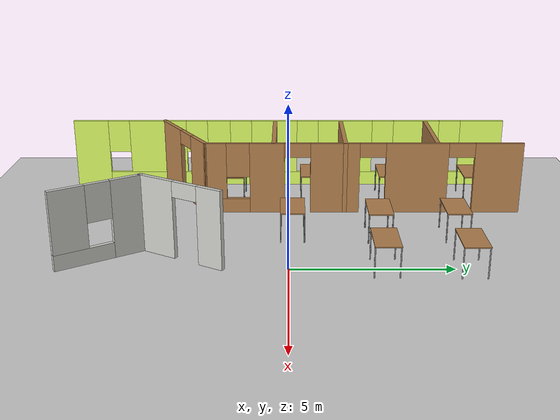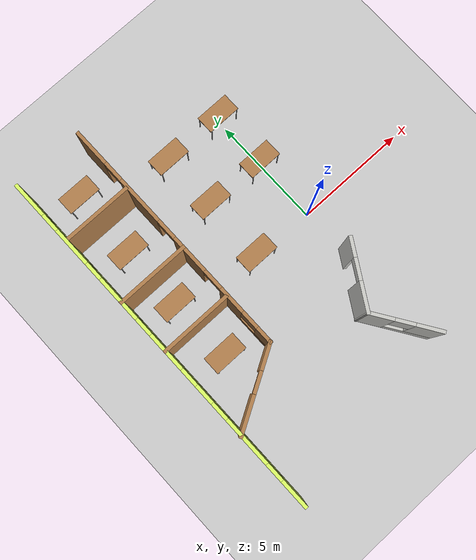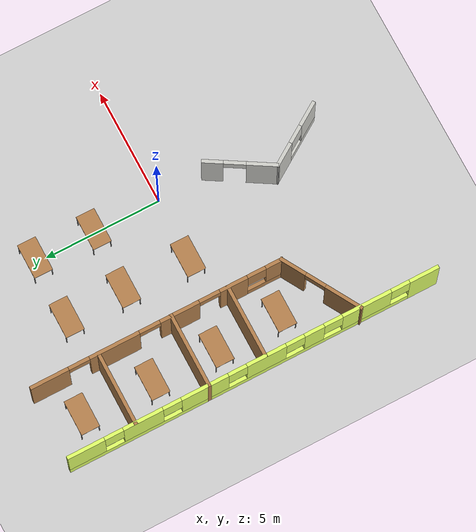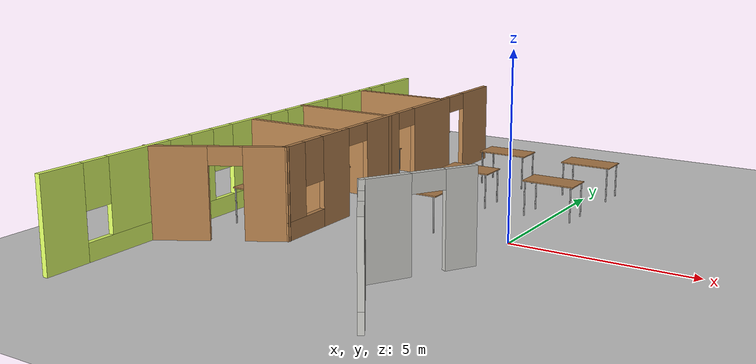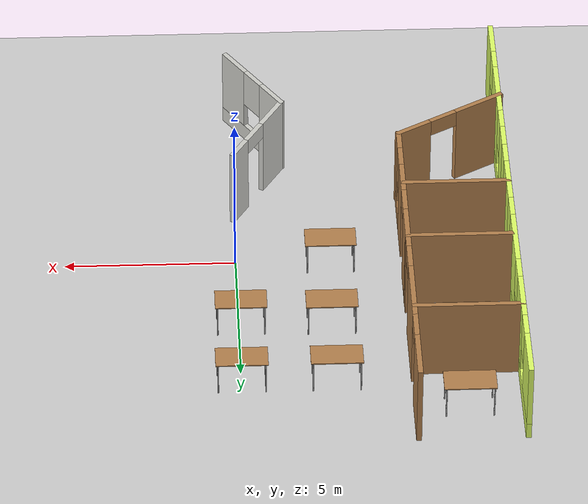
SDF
<sdf version="1.6">
 <world name="default">
  <model name="ground_plane">
   <static>1</static>
   <link name="link">
    <collision name="collision">
     <geometry><plane><normal>0 0 1</normal><size>100 100</size></plane></geometry>
     <surface>
      <contact><collide_bitmask>65535</collide_bitmask></contact>
      <friction><ode><mu>100</mu><mu2>50</mu2></ode></friction>
     </surface>
    </collision>
    <visual name="visual">
     <cast_shadows>0</cast_shadows>
     <geometry><plane><normal>0 0 1</normal><size>100 100</size></plane></geometry>
     <material>
      <script><uri>file://media/materials/scripts/gazebo.material</uri><name>Gazebo/Grey</name></script>
     </material>
    </visual>
   </link>
  </model>
  <model name="myBuilding">
   <pose>-0.01524 -2.0117 0 0 -0 0</pose>
   <link name="Wall_1">
    <pose>-7.98476 2.0117 0 0 -0 1.5708</pose>
    <visual name="Wall_1_Visual_0">
     <pose>-7.43035 0 1.25 0 -0 0</pose>
     <geometry><box><size>1.2893 0.15 2.5</size></box></geometry>
     <material>
      <script><uri>file://media/materials/scripts/gazebo.material</uri><name>Gazebo/Grey</name></script>
      <ambient>0.870588 1 0.4 1</ambient>
     </material>
     <meta><layer>0</layer></meta>
    </visual>
    <collision name="Wall_1_Collision_0">
     <geometry><box><size>1.2893 0.15 2.5</size></box></geometry>
     <pose>-7.43035 0 1.25 0 -0 0</pose>
    </collision>
    <visual name="Wall_1_Visual_1">
     <pose>0.64465 0 0.25 0 -0 0</pose>
     <geometry><box><size>14.8607 0.15 0.5</size></box></geometry>
     <material>
      <script><uri>file://media/materials/scripts/gazebo.material</uri><name>Gazebo/Grey</name></script>
      <ambient>0.870588 1 0.4 1</ambient>
     </material>
     <meta><layer>0</layer></meta>
    </visual>
    <collision name="Wall_1_Collision_1">
     <geometry><box><size>14.8607 0.15 0.5</size></box></geometry>
     <pose>0.64465 0 0.25 0 -0 0</pose>
    </collision>
    <visual name="Wall_1_Visual_2">
     <pose>-4.91735 0 1.5 0 -0 0</pose>
     <geometry><box><size>2.13671 0.15 2</size></box></geometry>
     <material>
      <script><uri>file://media/materials/scripts/gazebo.material</uri><name>Gazebo/Grey</name></script>
      <ambient>0.870588 1 0.4 1</ambient>
     </material>
     <meta><layer>0</layer></meta>
    </visual>
    <collision name="Wall_1_Collision_2">
     <geometry><box><size>2.13671 0.15 2</size></box></geometry>
     <pose>-4.91735 0 1.5 0 -0 0</pose>
    </collision>
    <visual name="Wall_1_Visual_3">
     <pose>-2.61971 0 1.5 0 -0 0</pose>
     <geometry><box><size>0.858577 0.15 2</size></box></geometry>
     <material>
      <script><uri>file://media/materials/scripts/gazebo.material</uri><name>Gazebo/Grey</name></script>
      <ambient>0.870588 1 0.4 1</ambient>
     </material>
     <meta><layer>0</layer></meta>
    </visual>
    <collision name="Wall_1_Collision_3">
     <geometry><box><size>0.858577 0.15 2</size></box></geometry>
     <pose>-2.61971 0 1.5 0 -0 0</pose>
    </collision>
    <visual name="Wall_1_Visual_4">
     <pose>-0.533107 0 1.5 0 -0 0</pose>
     <geometry><box><size>1.71462 0.15 2</size></box></geometry>
     <material>
      <script><uri>file://media/materials/scripts/gazebo.material</uri><name>Gazebo/Grey</name></script>
      <ambient>0.870588 1 0.4 1</ambient>
     </material>
     <meta><layer>0</layer></meta>
    </visual>
    <collision name="Wall_1_Collision_4">
     <geometry><box><size>1.71462 0.15 2</size></box></geometry>
     <pose>-0.533107 0 1.5 0 -0 0</pose>
    </collision>
    <visual name="Wall_1_Visual_5">
     <pose>2.14202 0 1.5 0 -0 0</pose>
     <geometry><box><size>2.03563 0.15 2</size></box></geometry>
     <material>
      <script><uri>file://media/materials/scripts/gazebo.material</uri><name>Gazebo/Grey</name></script>
      <ambient>0.870588 1 0.4 1</ambient>
     </material>
     <meta><layer>0</layer></meta>
    </visual>
    <collision name="Wall_1_Collision_5">
     <geometry><box><size>2.03563 0.15 2</size></box></geometry>
     <pose>2.14202 0 1.5 0 -0 0</pose>
    </collision>
    <visual name="Wall_1_Visual_6">
     <pose>4.81656 0 1.5 0 -0 0</pose>
     <geometry><box><size>1.71345 0.15 2</size></box></geometry>
     <material>
      <script><uri>file://media/materials/scripts/gazebo.material</uri><name>Gazebo/Grey</name></script>
      <ambient>0.870588 1 0.4 1</ambient>
     </material>
     <meta><layer>0</layer></meta>
    </visual>
    <collision name="Wall_1_Collision_6">
     <geometry><box><size>1.71345 0.15 2</size></box></geometry>
     <pose>4.81656 0 1.5 0 -0 0</pose>
    </collision>
    <visual name="Wall_1_Visual_7">
     <pose>7.27414 0 1.5 0 -0 0</pose>
     <geometry><box><size>1.60171 0.15 2</size></box></geometry>
     <material>
      <script><uri>file://media/materials/scripts/gazebo.material</uri><name>Gazebo/Grey</name></script>
      <ambient>0.870588 1 0.4 1</ambient>
     </material>
     <meta><layer>0</layer></meta>
    </visual>
    <collision name="Wall_1_Collision_7">
     <geometry><box><size>1.60171 0.15 2</size></box></geometry>
     <pose>7.27414 0 1.5 0 -0 0</pose>
    </collision>
    <visual name="Wall_1_Visual_8">
     <pose>-6.3857 0 1.9 0 -0 0</pose>
     <geometry><box><size>0.8 0.15 1.2</size></box></geometry>
     <material>
      <script><uri>file://media/materials/scripts/gazebo.material</uri><name>Gazebo/Grey</name></script>
      <ambient>0.870588 1 0.4 1</ambient>
     </material>
     <meta><layer>0</layer></meta>
    </visual>
    <collision name="Wall_1_Collision_8">
     <geometry><box><size>0.8 0.15 1.2</size></box></geometry>
     <pose>-6.3857 0 1.9 0 -0 0</pose>
    </collision>
    <visual name="Wall_1_Visual_9">
     <pose>-3.44899 0 1.9 0 -0 0</pose>
     <geometry><box><size>0.8 0.15 1.2</size></box></geometry>
     <material>
      <script><uri>file://media/materials/scripts/gazebo.material</uri><name>Gazebo/Grey</name></script>
      <ambient>0.870588 1 0.4 1</ambient>
     </material>
     <meta><layer>0</layer></meta>
    </visual>
    <collision name="Wall_1_Collision_9">
     <geometry><box><size>0.8 0.15 1.2</size></box></geometry>
     <pose>-3.44899 0 1.9 0 -0 0</pose>
    </collision>
    <visual name="Wall_1_Visual_10">
     <pose>-1.79042 0 1.9 0 -0 0</pose>
     <geometry><box><size>0.8 0.15 1.2</size></box></geometry>
     <material>
      <script><uri>file://media/materials/scripts/gazebo.material</uri><name>Gazebo/Grey</name></script>
      <ambient>0.870588 1 0.4 1</ambient>
     </material>
     <meta><layer>0</layer></meta>
    </visual>
    <collision name="Wall_1_Collision_10">
     <geometry><box><size>0.8 0.15 1.2</size></box></geometry>
     <pose>-1.79042 0 1.9 0 -0 0</pose>
    </collision>
    <visual name="Wall_1_Visual_11">
     <pose>0.724202 0 1.9 0 -0 0</pose>
     <geometry><box><size>0.8 0.15 1.2</size></box></geometry>
     <material>
      <script><uri>file://media/materials/scripts/gazebo.material</uri><name>Gazebo/Grey</name></script>
      <ambient>0.870588 1 0.4 1</ambient>
     </material>
     <meta><layer>0</layer></meta>
    </visual>
    <collision name="Wall_1_Collision_11">
     <geometry><box><size>0.8 0.15 1.2</size></box></geometry>
     <pose>0.724202 0 1.9 0 -0 0</pose>
    </collision>
    <visual name="Wall_1_Visual_12">
     <pose>3.55983 0 1.9 0 -0 0</pose>
     <geometry><box><size>0.8 0.15 1.2</size></box></geometry>
     <material>
      <script><uri>file://media/materials/scripts/gazebo.material</uri><name>Gazebo/Grey</name></script>
      <ambient>0.870588 1 0.4 1</ambient>
     </material>
     <meta><layer>0</layer></meta>
    </visual>
    <collision name="Wall_1_Collision_12">
     <geometry><box><size>0.8 0.15 1.2</size></box></geometry>
     <pose>3.55983 0 1.9 0 -0 0</pose>
    </collision>
    <visual name="Wall_1_Visual_13">
     <pose>6.07329 0 1.9 0 -0 0</pose>
     <geometry><box><size>0.8 0.15 1.2</size></box></geometry>
     <material>
      <script><uri>file://media/materials/scripts/gazebo.material</uri><name>Gazebo/Grey</name></script>
      <ambient>0.870588 1 0.4 1</ambient>
     </material>
     <meta><layer>0</layer></meta>
    </visual>
    <collision name="Wall_1_Collision_13">
     <geometry><box><size>0.8 0.15 1.2</size></box></geometry>
     <pose>6.07329 0 1.9 0 -0 0</pose>
    </collision>
   </link>
   <link name="Wall_21">
    <pose>-4.90051 4.59371 0 0 0 -1.5708</pose>
    <visual name="Wall_21_Visual_0">
     <pose>-4.67112 0 1.25 0 -0 0</pose>
     <geometry><box><size>1.65776 0.15 2.5</size></box></geometry>
     <material>
      <script><uri>file://media/materials/scripts/gazebo.material</uri><name>Gazebo/Wood</name></script>
      <ambient>1 0.976471 0.866667 1</ambient>
     </material>
     <meta><layer>0</layer></meta>
    </visual>
    <collision name="Wall_21_Collision_0">
     <geometry><box><size>1.65776 0.15 2.5</size></box></geometry>
     <pose>-4.67112 0 1.25 0 -0 0</pose>
    </collision>
    <visual name="Wall_21_Visual_1">
     <pose>-1.86272 0 1.25 0 -0 0</pose>
     <geometry><box><size>2.15902 0.15 2.5</size></box></geometry>
     <material>
      <script><uri>file://media/materials/scripts/gazebo.material</uri><name>Gazebo/Wood</name></script>
      <ambient>1 0.976471 0.866667 1</ambient>
     </material>
     <meta><layer>0</layer></meta>
    </visual>
    <collision name="Wall_21_Collision_1">
     <geometry><box><size>2.15902 0.15 2.5</size></box></geometry>
     <pose>-1.86272 0 1.25 0 -0 0</pose>
    </collision>
    <visual name="Wall_21_Visual_2">
     <pose>0.966873 0 1.25 0 -0 0</pose>
     <geometry><box><size>1.70017 0.15 2.5</size></box></geometry>
     <material>
      <script><uri>file://media/materials/scripts/gazebo.material</uri><name>Gazebo/Wood</name></script>
      <ambient>1 0.976471 0.866667 1</ambient>
     </material>
     <meta><layer>0</layer></meta>
    </visual>
    <collision name="Wall_21_Collision_2">
     <geometry><box><size>1.70017 0.15 2.5</size></box></geometry>
     <pose>0.966873 0 1.25 0 -0 0</pose>
    </collision>
    <visual name="Wall_21_Visual_3">
     <pose>3.31748 0 1.25 0 -0 0</pose>
     <geometry><box><size>1.20104 0.15 2.5</size></box></geometry>
     <material>
      <script><uri>file://media/materials/scripts/gazebo.material</uri><name>Gazebo/Wood</name></script>
      <ambient>1 0.976471 0.866667 1</ambient>
     </material>
     <meta><layer>0</layer></meta>
    </visual>
    <collision name="Wall_21_Collision_3">
     <geometry><box><size>1.20104 0.15 2.5</size></box></geometry>
     <pose>3.31748 0 1.25 0 -0 0</pose>
    </collision>
    <visual name="Wall_21_Visual_4">
     <pose>4.709 0 0.25 0 -0 0</pose>
     <geometry><box><size>1.582 0.15 0.5</size></box></geometry>
     <material>
      <script><uri>file://media/materials/scripts/gazebo.material</uri><name>Gazebo/Wood</name></script>
      <ambient>1 0.976471 0.866667 1</ambient>
     </material>
     <meta><layer>0</layer></meta>
    </visual>
    <collision name="Wall_21_Collision_4">
     <geometry><box><size>1.582 0.15 0.5</size></box></geometry>
     <pose>4.709 0 0.25 0 -0 0</pose>
    </collision>
    <visual name="Wall_21_Visual_5">
     <pose>5.109 0 1.5 0 -0 0</pose>
     <geometry><box><size>0.782004 0.15 2</size></box></geometry>
     <material>
      <script><uri>file://media/materials/scripts/gazebo.material</uri><name>Gazebo/Wood</name></script>
      <ambient>1 0.976471 0.866667 1</ambient>
     </material>
     <meta><layer>0</layer></meta>
    </visual>
    <collision name="Wall_21_Collision_5">
     <geometry><box><size>0.782004 0.15 2</size></box></geometry>
     <pose>5.109 0 1.5 0 -0 0</pose>
    </collision>
    <visual name="Wall_21_Visual_6">
     <pose>4.318 0 1.9 0 -0 0</pose>
     <geometry><box><size>0.8 0.15 1.2</size></box></geometry>
     <material>
      <script><uri>file://media/materials/scripts/gazebo.material</uri><name>Gazebo/Wood</name></script>
      <ambient>1 0.976471 0.866667 1</ambient>
     </material>
     <meta><layer>0</layer></meta>
    </visual>
    <collision name="Wall_21_Collision_6">
     <geometry><box><size>0.8 0.15 1.2</size></box></geometry>
     <pose>4.318 0 1.9 0 -0 0</pose>
    </collision>
    <visual name="Wall_21_Visual_7">
     <pose>-3.39223 0 2.25 0 -0 0</pose>
     <geometry><box><size>0.9 0.15 0.5</size></box></geometry>
     <material>
      <script><uri>file://media/materials/scripts/gazebo.material</uri><name>Gazebo/Wood</name></script>
      <ambient>1 0.976471 0.866667 1</ambient>
     </material>
     <meta><layer>0</layer></meta>
    </visual>
    <collision name="Wall_21_Collision_7">
     <geometry><box><size>0.9 0.15 0.5</size></box></geometry>
     <pose>-3.39223 0 2.25 0 -0 0</pose>
    </collision>
    <visual name="Wall_21_Visual_8">
     <pose>-0.333212 0 2.25 0 -0 0</pose>
     <geometry><box><size>0.9 0.15 0.5</size></box></geometry>
     <material>
      <script><uri>file://media/materials/scripts/gazebo.material</uri><name>Gazebo/Wood</name></script>
      <ambient>1 0.976471 0.866667 1</ambient>
     </material>
     <meta><layer>0</layer></meta>
    </visual>
    <collision name="Wall_21_Collision_8">
     <geometry><box><size>0.9 0.15 0.5</size></box></geometry>
     <pose>-0.333212 0 2.25 0 -0 0</pose>
    </collision>
    <visual name="Wall_21_Visual_9">
     <pose>2.26696 0 2.25 0 -0 0</pose>
     <geometry><box><size>0.9 0.15 0.5</size></box></geometry>
     <material>
      <script><uri>file://media/materials/scripts/gazebo.material</uri><name>Gazebo/Wood</name></script>
      <ambient>1 0.976471 0.866667 1</ambient>
     </material>
     <meta><layer>0</layer></meta>
    </visual>
    <collision name="Wall_21_Collision_9">
     <geometry><box><size>0.9 0.15 0.5</size></box></geometry>
     <pose>2.26696 0 2.25 0 -0 0</pose>
    </collision>
   </link>
   <link name="Wall_22">
    <pose>-6.45936 -1.73129 0 0 0 -2.61799</pose>
    <visual name="Wall_22_Visual_0">
     <pose>-1.28514 0 1.25 0 -0 0</pose>
     <geometry><box><size>1.17972 0.15 2.5</size></box></geometry>
     <material>
      <script><uri>file://media/materials/scripts/gazebo.material</uri><name>Gazebo/Wood</name></script>
      <ambient>1 0.976471 0.866667 1</ambient>
     </material>
     <meta><layer>0</layer></meta>
    </visual>
    <collision name="Wall_22_Collision_0">
     <geometry><box><size>1.17972 0.15 2.5</size></box></geometry>
     <pose>-1.28514 0 1.25 0 -0 0</pose>
    </collision>
    <visual name="Wall_22_Visual_1">
     <pose>1.03986 0 1.25 0 -0 0</pose>
     <geometry><box><size>1.67028 0.15 2.5</size></box></geometry>
     <material>
      <script><uri>file://media/materials/scripts/gazebo.material</uri><name>Gazebo/Wood</name></script>
      <ambient>1 0.976471 0.866667 1</ambient>
     </material>
     <meta><layer>0</layer></meta>
    </visual>
    <collision name="Wall_22_Collision_1">
     <geometry><box><size>1.67028 0.15 2.5</size></box></geometry>
     <pose>1.03986 0 1.25 0 -0 0</pose>
    </collision>
    <visual name="Wall_22_Visual_2">
     <pose>-0.24528 0 2.25 0 -0 0</pose>
     <geometry><box><size>0.9 0.15 0.5</size></box></geometry>
     <material>
      <script><uri>file://media/materials/scripts/gazebo.material</uri><name>Gazebo/Wood</name></script>
      <ambient>1 0.976471 0.866667 1</ambient>
     </material>
     <meta><layer>0</layer></meta>
    </visual>
    <collision name="Wall_22_Collision_2">
     <geometry><box><size>0.9 0.15 0.5</size></box></geometry>
     <pose>-0.24528 0 2.25 0 -0 0</pose>
    </collision>
   </link>
   <link name="Wall_29">
    <collision name="Wall_29_Collision">
     <geometry><box><size>3.23933 0.15 2.5</size></box></geometry>
     <pose>0 0 1.25 0 -0 0</pose>
    </collision>
    <visual name="Wall_29_Visual">
     <pose>0 0 1.25 0 -0 0</pose>
     <geometry><box><size>3.23933 0.15 2.5</size></box></geometry>
     <material>
      <script><uri>file://media/materials/scripts/gazebo.material</uri><name>Gazebo/Wood</name></script>
      <ambient>1 0.976471 0.866667 1</ambient>
     </material>
     <meta><layer>0</layer></meta>
    </visual>
    <pose>-6.44026 3.9777 0 0 -0 0</pose>
   </link>
   <link name="Wall_31">
    <collision name="Wall_31_Collision">
     <geometry><box><size>3.234 0.15 2.5</size></box></geometry>
     <pose>0 0 1.25 0 -0 0</pose>
    </collision>
    <visual name="Wall_31_Visual">
     <pose>0 0 1.25 0 -0 0</pose>
     <geometry><box><size>3.234 0.15 2.5</size></box></geometry>
     <material>
      <script><uri>file://media/materials/scripts/gazebo.material</uri><name>Gazebo/Wood</name></script>
      <ambient>1 0.976471 0.866667 1</ambient>
     </material>
     <meta><layer>0</layer></meta>
    </visual>
    <pose>-6.44276 7.1467 0 0 -0 0</pose>
   </link>
   <link name="Wall_35">
    <collision name="Wall_35_Collision">
     <geometry><box><size>3.22684 0.15 2.5</size></box></geometry>
     <pose>0 0 1.25 0 -0 0</pose>
    </collision>
    <visual name="Wall_35_Visual">
     <pose>0 0 1.25 0 -0 0</pose>
     <geometry><box><size>3.22684 0.15 2.5</size></box></geometry>
     <material>
      <script><uri>file://media/materials/scripts/gazebo.material</uri><name>Gazebo/Wood</name></script>
      <ambient>1 0.976471 0.866667 1</ambient>
     </material>
     <meta><layer>0</layer></meta>
    </visual>
    <pose>-6.44626 1.5187 0 0 -0 0</pose>
   </link>
   <link name="Wall_46">
    <pose>-0.734763 -1.2383 0 0 0 -2.11122</pose>
    <visual name="Wall_46_Visual_0">
     <pose>-1.10227 0 1.25 0 -0 0</pose>
     <geometry><box><size>0.860943 0.15 2.5</size></box></geometry>
     <material>
      <script><uri>file://media/materials/scripts/gazebo.material</uri><name>Gazebo/CeilingTiled</name></script>
      <ambient>0.662745 0.929412 1 1</ambient>
     </material>
     <meta><layer>0</layer></meta>
    </visual>
    <collision name="Wall_46_Collision_0">
     <geometry><box><size>0.860943 0.15 2.5</size></box></geometry>
     <pose>-1.10227 0 1.25 0 -0 0</pose>
    </collision>
    <visual name="Wall_46_Visual_1">
     <pose>0.880472 0 1.25 0 -0 0</pose>
     <geometry><box><size>1.30453 0.15 2.5</size></box></geometry>
     <material>
      <script><uri>file://media/materials/scripts/gazebo.material</uri><name>Gazebo/CeilingTiled</name></script>
      <ambient>0.662745 0.929412 1 1</ambient>
     </material>
     <meta><layer>0</layer></meta>
    </visual>
    <collision name="Wall_46_Collision_1">
     <geometry><box><size>1.30453 0.15 2.5</size></box></geometry>
     <pose>0.880472 0 1.25 0 -0 0</pose>
    </collision>
    <visual name="Wall_46_Visual_2">
     <pose>-0.221794 0 2.25 0 -0 0</pose>
     <geometry><box><size>0.9 0.15 0.5</size></box></geometry>
     <material>
      <script><uri>file://media/materials/scripts/gazebo.material</uri><name>Gazebo/CeilingTiled</name></script>
      <ambient>0.662745 0.929412 1 1</ambient>
     </material>
     <meta><layer>0</layer></meta>
    </visual>
    <collision name="Wall_46_Collision_2">
     <geometry><box><size>0.9 0.15 0.5</size></box></geometry>
     <pose>-0.221794 0 2.25 0 -0 0</pose>
    </collision>
   </link>
   <link name="Wall_47">
    <pose>-0.697263 -3.6883 0 0 0 -0.99004</pose>
    <visual name="Wall_47_Visual_0">
     <pose>-0.962388 0 1.25 0 -0 0</pose>
     <geometry><box><size>1.09587 0.15 2.5</size></box></geometry>
     <material>
      <script><uri>file://media/materials/scripts/gazebo.material</uri><name>Gazebo/CeilingTiled</name></script>
      <ambient>0.662745 0.929412 1 1</ambient>
     </material>
     <meta><layer>0</layer></meta>
    </visual>
    <collision name="Wall_47_Collision_0">
     <geometry><box><size>1.09587 0.15 2.5</size></box></geometry>
     <pose>-0.962388 0 1.25 0 -0 0</pose>
    </collision>
    <visual name="Wall_47_Visual_1">
     <pose>0.547936 0 0.25 0 -0 0</pose>
     <geometry><box><size>1.92478 0.15 0.5</size></box></geometry>
     <material>
      <script><uri>file://media/materials/scripts/gazebo.material</uri><name>Gazebo/CeilingTiled</name></script>
      <ambient>0.662745 0.929412 1 1</ambient>
     </material>
     <meta><layer>0</layer></meta>
    </visual>
    <collision name="Wall_47_Collision_1">
     <geometry><box><size>1.92478 0.15 0.5</size></box></geometry>
     <pose>0.547936 0 0.25 0 -0 0</pose>
    </collision>
    <visual name="Wall_47_Visual_2">
     <pose>0.947936 0 1.5 0 -0 0</pose>
     <geometry><box><size>1.12478 0.15 2</size></box></geometry>
     <material>
      <script><uri>file://media/materials/scripts/gazebo.material</uri><name>Gazebo/CeilingTiled</name></script>
      <ambient>0.662745 0.929412 1 1</ambient>
     </material>
     <meta><layer>0</layer></meta>
    </visual>
    <collision name="Wall_47_Collision_2">
     <geometry><box><size>1.12478 0.15 2</size></box></geometry>
     <pose>0.947936 0 1.5 0 -0 0</pose>
    </collision>
    <visual name="Wall_47_Visual_3">
     <pose>-0.014452 0 1.9 0 -0 0</pose>
     <geometry><box><size>0.8 0.15 1.2</size></box></geometry>
     <material>
      <script><uri>file://media/materials/scripts/gazebo.material</uri><name>Gazebo/CeilingTiled</name></script>
      <ambient>0.662745 0.929412 1 1</ambient>
     </material>
     <meta><layer>0</layer></meta>
    </visual>
    <collision name="Wall_47_Collision_3">
     <geometry><box><size>0.8 0.15 1.2</size></box></geometry>
     <pose>-0.014452 0 1.9 0 -0 0</pose>
    </collision>
   </link>
   <static>1</static>
  </model>
  <model name="table">
   <static>1</static>
   <link name="link">
    <collision name="surface">
     <pose>0 0 1 0 -0 0</pose>
     <geometry><box><size>1.5 0.8 0.03</size></box></geometry>
     <surface><friction><ode><mu>0.6</mu><mu2>0.6</mu2></ode></friction></surface>
    </collision>
    <visual name="visual1">
     <pose>0 0 1 0 -0 0</pose>
     <geometry><box><size>1.5 0.8 0.03</size></box></geometry>
     <material>
      <script><uri>file://media/materials/scripts/gazebo.material</uri><name>Gazebo/Wood</name></script>
     </material>
    </visual>
    <collision name="front_left_leg">
     <pose>0.68 0.38 0.5 0 -0 0</pose>
     <geometry><cylinder><radius>0.02</radius><length>1</length></cylinder></geometry>
    </collision>
    <visual name="front_left_leg">
     <pose>0.68 0.38 0.5 0 -0 0</pose>
     <geometry><cylinder><radius>0.02</radius><length>1</length></cylinder></geometry>
     <material>
      <script><uri>file://media/materials/scripts/gazebo.material</uri><name>Gazebo/Grey</name></script>
     </material>
    </visual>
    <collision name="front_right_leg">
     <pose>0.68 -0.38 0.5 0 -0 0</pose>
     <geometry><cylinder><radius>0.02</radius><length>1</length></cylinder></geometry>
    </collision>
    <visual name="front_right_leg">
     <pose>0.68 -0.38 0.5 0 -0 0</pose>
     <geometry><cylinder><radius>0.02</radius><length>1</length></cylinder></geometry>
     <material>
      <script><uri>file://media/materials/scripts/gazebo.material</uri><name>Gazebo/Grey</name></script>
     </material>
    </visual>
    <collision name="back_right_leg">
     <pose>-0.68 -0.38 0.5 0 -0 0</pose>
     <geometry><cylinder><radius>0.02</radius><length>1</length></cylinder></geometry>
    </collision>
    <visual name="back_right_leg">
     <pose>-0.68 -0.38 0.5 0 -0 0</pose>
     <geometry><cylinder><radius>0.02</radius><length>1</length></cylinder></geometry>
     <material>
      <script><uri>file://media/materials/scripts/gazebo.material</uri><name>Gazebo/Grey</name></script>
     </material>
    </visual>
    <collision name="back_left_leg">
     <pose>-0.68 0.38 0.5 0 -0 0</pose>
     <geometry><cylinder><radius>0.02</radius><length>1</length></cylinder></geometry>
    </collision>
    <visual name="back_left_leg">
     <pose>-0.68 0.38 0.5 0 -0 0</pose>
     <geometry><cylinder><radius>0.02</radius><length>1</length></cylinder></geometry>
     <material>
      <script><uri>file://media/materials/scripts/gazebo.material</uri><name>Gazebo/Grey</name></script>
     </material>
    </visual>
   </link>
   <pose>-2.71961 5.44402 0 0 -0 0</pose>
  </model>
  <model name="table_0">
   <static>1</static>
   <link name="link">
    <collision name="surface">
     <pose>0 0 1 0 -0 0</pose>
     <geometry><box><size>1.5 0.8 0.03</size></box></geometry>
     <surface><friction><ode><mu>0.6</mu><mu2>0.6</mu2></ode></friction></surface>
    </collision>
    <visual name="visual1">
     <pose>0 0 1 0 -0 0</pose>
     <geometry><box><size>1.5 0.8 0.03</size></box></geometry>
     <material>
      <script><uri>file://media/materials/scripts/gazebo.material</uri><name>Gazebo/Wood</name></script>
     </material>
    </visual>
    <collision name="front_left_leg">
     <pose>0.68 0.38 0.5 0 -0 0</pose>
     <geometry><cylinder><radius>0.02</radius><length>1</length></cylinder></geometry>
    </collision>
    <visual name="front_left_leg">
     <pose>0.68 0.38 0.5 0 -0 0</pose>
     <geometry><cylinder><radius>0.02</radius><length>1</length></cylinder></geometry>
     <material>
      <script><uri>file://media/materials/scripts/gazebo.material</uri><name>Gazebo/Grey</name></script>
     </material>
    </visual>
    <collision name="front_right_leg">
     <pose>0.68 -0.38 0.5 0 -0 0</pose>
     <geometry><cylinder><radius>0.02</radius><length>1</length></cylinder></geometry>
    </collision>
    <visual name="front_right_leg">
     <pose>0.68 -0.38 0.5 0 -0 0</pose>
     <geometry><cylinder><radius>0.02</radius><length>1</length></cylinder></geometry>
     <material>
      <script><uri>file://media/materials/scripts/gazebo.material</uri><name>Gazebo/Grey</name></script>
     </material>
    </visual>
    <collision name="back_right_leg">
     <pose>-0.68 -0.38 0.5 0 -0 0</pose>
     <geometry><cylinder><radius>0.02</radius><length>1</length></cylinder></geometry>
    </collision>
    <visual name="back_right_leg">
     <pose>-0.68 -0.38 0.5 0 -0 0</pose>
     <geometry><cylinder><radius>0.02</radius><length>1</length></cylinder></geometry>
     <material>
      <script><uri>file://media/materials/scripts/gazebo.material</uri><name>Gazebo/Grey</name></script>
     </material>
    </visual>
    <collision name="back_left_leg">
     <pose>-0.68 0.38 0.5 0 -0 0</pose>
     <geometry><cylinder><radius>0.02</radius><length>1</length></cylinder></geometry>
    </collision>
    <visual name="back_left_leg">
     <pose>-0.68 0.38 0.5 0 -0 0</pose>
     <geometry><cylinder><radius>0.02</radius><length>1</length></cylinder></geometry>
     <material>
      <script><uri>file://media/materials/scripts/gazebo.material</uri><name>Gazebo/Grey</name></script>
     </material>
    </visual>
   </link>
   <pose>-2.68825 2.9491 0 0 -0 0</pose>
  </model>
  <model name="table_1">
   <static>1</static>
   <link name="link">
    <collision name="surface">
     <pose>0 0 1 0 -0 0</pose>
     <geometry><box><size>1.5 0.8 0.03</size></box></geometry>
     <surface><friction><ode><mu>0.6</mu><mu2>0.6</mu2></ode></friction></surface>
    </collision>
    <visual name="visual1">
     <pose>0 0 1 0 -0 0</pose>
     <geometry><box><size>1.5 0.8 0.03</size></box></geometry>
     <material>
      <script><uri>file://media/materials/scripts/gazebo.material</uri><name>Gazebo/Wood</name></script>
     </material>
    </visual>
    <collision name="front_left_leg">
     <pose>0.68 0.38 0.5 0 -0 0</pose>
     <geometry><cylinder><radius>0.02</radius><length>1</length></cylinder></geometry>
    </collision>
    <visual name="front_left_leg">
     <pose>0.68 0.38 0.5 0 -0 0</pose>
     <geometry><cylinder><radius>0.02</radius><length>1</length></cylinder></geometry>
     <material>
      <script><uri>file://media/materials/scripts/gazebo.material</uri><name>Gazebo/Grey</name></script>
     </material>
    </visual>
    <collision name="front_right_leg">
     <pose>0.68 -0.38 0.5 0 -0 0</pose>
     <geometry><cylinder><radius>0.02</radius><length>1</length></cylinder></geometry>
    </collision>
    <visual name="front_right_leg">
     <pose>0.68 -0.38 0.5 0 -0 0</pose>
     <geometry><cylinder><radius>0.02</radius><length>1</length></cylinder></geometry>
     <material>
      <script><uri>file://media/materials/scripts/gazebo.material</uri><name>Gazebo/Grey</name></script>
     </material>
    </visual>
    <collision name="back_right_leg">
     <pose>-0.68 -0.38 0.5 0 -0 0</pose>
     <geometry><cylinder><radius>0.02</radius><length>1</length></cylinder></geometry>
    </collision>
    <visual name="back_right_leg">
     <pose>-0.68 -0.38 0.5 0 -0 0</pose>
     <geometry><cylinder><radius>0.02</radius><length>1</length></cylinder></geometry>
     <material>
      <script><uri>file://media/materials/scripts/gazebo.material</uri><name>Gazebo/Grey</name></script>
     </material>
    </visual>
    <collision name="back_left_leg">
     <pose>-0.68 0.38 0.5 0 -0 0</pose>
     <geometry><cylinder><radius>0.02</radius><length>1</length></cylinder></geometry>
    </collision>
    <visual name="back_left_leg">
     <pose>-0.68 0.38 0.5 0 -0 0</pose>
     <geometry><cylinder><radius>0.02</radius><length>1</length></cylinder></geometry>
     <material>
      <script><uri>file://media/materials/scripts/gazebo.material</uri><name>Gazebo/Grey</name></script>
     </material>
    </visual>
   </link>
   <pose>-0.015948 5.44236 0 0 -0 0</pose>
  </model>
  <model name="table_2">
   <static>1</static>
   <link name="link">
    <collision name="surface">
     <pose>0 0 1 0 -0 0</pose>
     <geometry><box><size>1.5 0.8 0.03</size></box></geometry>
     <surface><friction><ode><mu>0.6</mu><mu2>0.6</mu2></ode></friction></surface>
    </collision>
    <visual name="visual1">
     <pose>0 0 1 0 -0 0</pose>
     <geometry><box><size>1.5 0.8 0.03</size></box></geometry>
     <material>
      <script><uri>file://media/materials/scripts/gazebo.material</uri><name>Gazebo/Wood</name></script>
     </material>
    </visual>
    <collision name="front_left_leg">
     <pose>0.68 0.38 0.5 0 -0 0</pose>
     <geometry><cylinder><radius>0.02</radius><length>1</length></cylinder></geometry>
    </collision>
    <visual name="front_left_leg">
     <pose>0.68 0.38 0.5 0 -0 0</pose>
     <geometry><cylinder><radius>0.02</radius><length>1</length></cylinder></geometry>
     <material>
      <script><uri>file://media/materials/scripts/gazebo.material</uri><name>Gazebo/Grey</name></script>
     </material>
    </visual>
    <collision name="front_right_leg">
     <pose>0.68 -0.38 0.5 0 -0 0</pose>
     <geometry><cylinder><radius>0.02</radius><length>1</length></cylinder></geometry>
    </collision>
    <visual name="front_right_leg">
     <pose>0.68 -0.38 0.5 0 -0 0</pose>
     <geometry><cylinder><radius>0.02</radius><length>1</length></cylinder></geometry>
     <material>
      <script><uri>file://media/materials/scripts/gazebo.material</uri><name>Gazebo/Grey</name></script>
     </material>
    </visual>
    <collision name="back_right_leg">
     <pose>-0.68 -0.38 0.5 0 -0 0</pose>
     <geometry><cylinder><radius>0.02</radius><length>1</length></cylinder></geometry>
    </collision>
    <visual name="back_right_leg">
     <pose>-0.68 -0.38 0.5 0 -0 0</pose>
     <geometry><cylinder><radius>0.02</radius><length>1</length></cylinder></geometry>
     <material>
      <script><uri>file://media/materials/scripts/gazebo.material</uri><name>Gazebo/Grey</name></script>
     </material>
    </visual>
    <collision name="back_left_leg">
     <pose>-0.68 0.38 0.5 0 -0 0</pose>
     <geometry><cylinder><radius>0.02</radius><length>1</length></cylinder></geometry>
    </collision>
    <visual name="back_left_leg">
     <pose>-0.68 0.38 0.5 0 -0 0</pose>
     <geometry><cylinder><radius>0.02</radius><length>1</length></cylinder></geometry>
     <material>
      <script><uri>file://media/materials/scripts/gazebo.material</uri><name>Gazebo/Grey</name></script>
     </material>
    </visual>
   </link>
   <pose>-0.070965 2.88606 0 0 -0 0</pose>
  </model>
  <model name="table_3">
   <static>1</static>
   <link name="link">
    <collision name="surface">
     <pose>0 0 1 0 -0 0</pose>
     <geometry><box><size>1.5 0.8 0.03</size></box></geometry>
     <surface><friction><ode><mu>0.6</mu><mu2>0.6</mu2></ode></friction></surface>
    </collision>
    <visual name="visual1">
     <pose>0 0 1 0 -0 0</pose>
     <geometry><box><size>1.5 0.8 0.03</size></box></geometry>
     <material>
      <script><uri>file://media/materials/scripts/gazebo.material</uri><name>Gazebo/Wood</name></script>
     </material>
    </visual>
    <collision name="front_left_leg">
     <pose>0.68 0.38 0.5 0 -0 0</pose>
     <geometry><cylinder><radius>0.02</radius><length>1</length></cylinder></geometry>
    </collision>
    <visual name="front_left_leg">
     <pose>0.68 0.38 0.5 0 -0 0</pose>
     <geometry><cylinder><radius>0.02</radius><length>1</length></cylinder></geometry>
     <material>
      <script><uri>file://media/materials/scripts/gazebo.material</uri><name>Gazebo/Grey</name></script>
     </material>
    </visual>
    <collision name="front_right_leg">
     <pose>0.68 -0.38 0.5 0 -0 0</pose>
     <geometry><cylinder><radius>0.02</radius><length>1</length></cylinder></geometry>
    </collision>
    <visual name="front_right_leg">
     <pose>0.68 -0.38 0.5 0 -0 0</pose>
     <geometry><cylinder><radius>0.02</radius><length>1</length></cylinder></geometry>
     <material>
      <script><uri>file://media/materials/scripts/gazebo.material</uri><name>Gazebo/Grey</name></script>
     </material>
    </visual>
    <collision name="back_right_leg">
     <pose>-0.68 -0.38 0.5 0 -0 0</pose>
     <geometry><cylinder><radius>0.02</radius><length>1</length></cylinder></geometry>
    </collision>
    <visual name="back_right_leg">
     <pose>-0.68 -0.38 0.5 0 -0 0</pose>
     <geometry><cylinder><radius>0.02</radius><length>1</length></cylinder></geometry>
     <material>
      <script><uri>file://media/materials/scripts/gazebo.material</uri><name>Gazebo/Grey</name></script>
     </material>
    </visual>
    <collision name="back_left_leg">
     <pose>-0.68 0.38 0.5 0 -0 0</pose>
     <geometry><cylinder><radius>0.02</radius><length>1</length></cylinder></geometry>
    </collision>
    <visual name="back_left_leg">
     <pose>-0.68 0.38 0.5 0 -0 0</pose>
     <geometry><cylinder><radius>0.02</radius><length>1</length></cylinder></geometry>
     <material>
      <script><uri>file://media/materials/scripts/gazebo.material</uri><name>Gazebo/Grey</name></script>
     </material>
    </visual>
   </link>
   <pose>-2.77057 0.136974 0 0 -0 0</pose>
  </model>
  <model name="table_9">
   <static>1</static>
   <link name="link">
    <collision name="surface">
     <pose>0 0 1 0 -0 0</pose>
     <geometry><box><size>1.5 0.8 0.03</size></box></geometry>
     <surface><friction><ode><mu>0.6</mu><mu2>0.6</mu2></ode></friction></surface>
    </collision>
    <visual name="visual1">
     <pose>0 0 1 0 -0 0</pose>
     <geometry><box><size>1.5 0.8 0.03</size></box></geometry>
     <material>
      <script><uri>file://media/materials/scripts/gazebo.material</uri><name>Gazebo/Wood</name></script>
     </material>
    </visual>
    <collision name="front_left_leg">
     <pose>0.68 0.38 0.5 0 -0 0</pose>
     <geometry><cylinder><radius>0.02</radius><length>1</length></cylinder></geometry>
    </collision>
    <visual name="front_left_leg">
     <pose>0.68 0.38 0.5 0 -0 0</pose>
     <geometry><cylinder><radius>0.02</radius><length>1</length></cylinder></geometry>
     <material>
      <script><uri>file://media/materials/scripts/gazebo.material</uri><name>Gazebo/Grey</name></script>
     </material>
    </visual>
    <collision name="front_right_leg">
     <pose>0.68 -0.38 0.5 0 -0 0</pose>
     <geometry><cylinder><radius>0.02</radius><length>1</length></cylinder></geometry>
    </collision>
    <visual name="front_right_leg">
     <pose>0.68 -0.38 0.5 0 -0 0</pose>
     <geometry><cylinder><radius>0.02</radius><length>1</length></cylinder></geometry>
     <material>
      <script><uri>file://media/materials/scripts/gazebo.material</uri><name>Gazebo/Grey</name></script>
     </material>
    </visual>
    <collision name="back_right_leg">
     <pose>-0.68 -0.38 0.5 0 -0 0</pose>
     <geometry><cylinder><radius>0.02</radius><length>1</length></cylinder></geometry>
    </collision>
    <visual name="back_right_leg">
     <pose>-0.68 -0.38 0.5 0 -0 0</pose>
     <geometry><cylinder><radius>0.02</radius><length>1</length></cylinder></geometry>
     <material>
      <script><uri>file://media/materials/scripts/gazebo.material</uri><name>Gazebo/Grey</name></script>
     </material>
    </visual>
    <collision name="back_left_leg">
     <pose>-0.68 0.38 0.5 0 -0 0</pose>
     <geometry><cylinder><radius>0.02</radius><length>1</length></cylinder></geometry>
    </collision>
    <visual name="back_left_leg">
     <pose>-0.68 0.38 0.5 0 -0 0</pose>
     <geometry><cylinder><radius>0.02</radius><length>1</length></cylinder></geometry>
     <material>
      <script><uri>file://media/materials/scripts/gazebo.material</uri><name>Gazebo/Grey</name></script>
     </material>
    </visual>
   </link>
   <pose>-6.42408 6.68953 0 0 -0 0</pose>
  </model>
  <model name="table_10">
   <static>1</static>
   <link name="link">
    <collision name="surface">
     <pose>0 0 1 0 -0 0</pose>
     <geometry><box><size>1.5 0.8 0.03</size></box></geometry>
     <surface><friction><ode><mu>0.6</mu><mu2>0.6</mu2></ode></friction></surface>
    </collision>
    <visual name="visual1">
     <pose>0 0 1 0 -0 0</pose>
     <geometry><box><size>1.5 0.8 0.03</size></box></geometry>
     <material>
      <script><uri>file://media/materials/scripts/gazebo.material</uri><name>Gazebo/Wood</name></script>
     </material>
    </visual>
    <collision name="front_left_leg">
     <pose>0.68 0.38 0.5 0 -0 0</pose>
     <geometry><cylinder><radius>0.02</radius><length>1</length></cylinder></geometry>
    </collision>
    <visual name="front_left_leg">
     <pose>0.68 0.38 0.5 0 -0 0</pose>
     <geometry><cylinder><radius>0.02</radius><length>1</length></cylinder></geometry>
     <material>
      <script><uri>file://media/materials/scripts/gazebo.material</uri><name>Gazebo/Grey</name></script>
     </material>
    </visual>
    <collision name="front_right_leg">
     <pose>0.68 -0.38 0.5 0 -0 0</pose>
     <geometry><cylinder><radius>0.02</radius><length>1</length></cylinder></geometry>
    </collision>
    <visual name="front_right_leg">
     <pose>0.68 -0.38 0.5 0 -0 0</pose>
     <geometry><cylinder><radius>0.02</radius><length>1</length></cylinder></geometry>
     <material>
      <script><uri>file://media/materials/scripts/gazebo.material</uri><name>Gazebo/Grey</name></script>
     </material>
    </visual>
    <collision name="back_right_leg">
     <pose>-0.68 -0.38 0.5 0 -0 0</pose>
     <geometry><cylinder><radius>0.02</radius><length>1</length></cylinder></geometry>
    </collision>
    <visual name="back_right_leg">
     <pose>-0.68 -0.38 0.5 0 -0 0</pose>
     <geometry><cylinder><radius>0.02</radius><length>1</length></cylinder></geometry>
     <material>
      <script><uri>file://media/materials/scripts/gazebo.material</uri><name>Gazebo/Grey</name></script>
     </material>
    </visual>
    <collision name="back_left_leg">
     <pose>-0.68 0.38 0.5 0 -0 0</pose>
     <geometry><cylinder><radius>0.02</radius><length>1</length></cylinder></geometry>
    </collision>
    <visual name="back_left_leg">
     <pose>-0.68 0.38 0.5 0 -0 0</pose>
     <geometry><cylinder><radius>0.02</radius><length>1</length></cylinder></geometry>
     <material>
      <script><uri>file://media/materials/scripts/gazebo.material</uri><name>Gazebo/Grey</name></script>
     </material>
    </visual>
   </link>
   <pose>-6.48377 3.65196 0 0 -0 0</pose>
  </model>
  <model name="table_11">
   <static>1</static>
   <link name="link">
    <collision name="surface">
     <pose>0 0 1 0 -0 0</pose>
     <geometry><box><size>1.5 0.8 0.03</size></box></geometry>
     <surface><friction><ode><mu>0.6</mu><mu2>0.6</mu2></ode></friction></surface>
    </collision>
    <visual name="visual1">
     <pose>0 0 1 0 -0 0</pose>
     <geometry><box><size>1.5 0.8 0.03</size></box></geometry>
     <material>
      <script><uri>file://media/materials/scripts/gazebo.material</uri><name>Gazebo/Wood</name></script>
     </material>
    </visual>
    <collision name="front_left_leg">
     <pose>0.68 0.38 0.5 0 -0 0</pose>
     <geometry><cylinder><radius>0.02</radius><length>1</length></cylinder></geometry>
    </collision>
    <visual name="front_left_leg">
     <pose>0.68 0.38 0.5 0 -0 0</pose>
     <geometry><cylinder><radius>0.02</radius><length>1</length></cylinder></geometry>
     <material>
      <script><uri>file://media/materials/scripts/gazebo.material</uri><name>Gazebo/Grey</name></script>
     </material>
    </visual>
    <collision name="front_right_leg">
     <pose>0.68 -0.38 0.5 0 -0 0</pose>
     <geometry><cylinder><radius>0.02</radius><length>1</length></cylinder></geometry>
    </collision>
    <visual name="front_right_leg">
     <pose>0.68 -0.38 0.5 0 -0 0</pose>
     <geometry><cylinder><radius>0.02</radius><length>1</length></cylinder></geometry>
     <material>
      <script><uri>file://media/materials/scripts/gazebo.material</uri><name>Gazebo/Grey</name></script>
     </material>
    </visual>
    <collision name="back_right_leg">
     <pose>-0.68 -0.38 0.5 0 -0 0</pose>
     <geometry><cylinder><radius>0.02</radius><length>1</length></cylinder></geometry>
    </collision>
    <visual name="back_right_leg">
     <pose>-0.68 -0.38 0.5 0 -0 0</pose>
     <geometry><cylinder><radius>0.02</radius><length>1</length></cylinder></geometry>
     <material>
      <script><uri>file://media/materials/scripts/gazebo.material</uri><name>Gazebo/Grey</name></script>
     </material>
    </visual>
    <collision name="back_left_leg">
     <pose>-0.68 0.38 0.5 0 -0 0</pose>
     <geometry><cylinder><radius>0.02</radius><length>1</length></cylinder></geometry>
    </collision>
    <visual name="back_left_leg">
     <pose>-0.68 0.38 0.5 0 -0 0</pose>
     <geometry><cylinder><radius>0.02</radius><length>1</length></cylinder></geometry>
     <material>
      <script><uri>file://media/materials/scripts/gazebo.material</uri><name>Gazebo/Grey</name></script>
     </material>
    </visual>
   </link>
   <pose>-6.49772 0.846697 0 0 -0 0</pose>
  </model>
  <model name="table_12">
   <static>1</static>
   <link name="link">
    <collision name="surface">
     <pose>0 0 1 0 -0 0</pose>
     <geometry><box><size>1.5 0.8 0.03</size></box></geometry>
     <surface><friction><ode><mu>0.6</mu><mu2>0.6</mu2></ode></friction></surface>
    </collision>
    <visual name="visual1">
     <pose>0 0 1 0 -0 0</pose>
     <geometry><box><size>1.5 0.8 0.03</size></box></geometry>
     <material>
      <script><uri>file://media/materials/scripts/gazebo.material</uri><name>Gazebo/Wood</name></script>
     </material>
    </visual>
    <collision name="front_left_leg">
     <pose>0.68 0.38 0.5 0 -0 0</pose>
     <geometry><cylinder><radius>0.02</radius><length>1</length></cylinder></geometry>
    </collision>
    <visual name="front_left_leg">
     <pose>0.68 0.38 0.5 0 -0 0</pose>
     <geometry><cylinder><radius>0.02</radius><length>1</length></cylinder></geometry>
     <material>
      <script><uri>file://media/materials/scripts/gazebo.material</uri><name>Gazebo/Grey</name></script>
     </material>
    </visual>
    <collision name="front_right_leg">
     <pose>0.68 -0.38 0.5 0 -0 0</pose>
     <geometry><cylinder><radius>0.02</radius><length>1</length></cylinder></geometry>
    </collision>
    <visual name="front_right_leg">
     <pose>0.68 -0.38 0.5 0 -0 0</pose>
     <geometry><cylinder><radius>0.02</radius><length>1</length></cylinder></geometry>
     <material>
      <script><uri>file://media/materials/scripts/gazebo.material</uri><name>Gazebo/Grey</name></script>
     </material>
    </visual>
    <collision name="back_right_leg">
     <pose>-0.68 -0.38 0.5 0 -0 0</pose>
     <geometry><cylinder><radius>0.02</radius><length>1</length></cylinder></geometry>
    </collision>
    <visual name="back_right_leg">
     <pose>-0.68 -0.38 0.5 0 -0 0</pose>
     <geometry><cylinder><radius>0.02</radius><length>1</length></cylinder></geometry>
     <material>
      <script><uri>file://media/materials/scripts/gazebo.material</uri><name>Gazebo/Grey</name></script>
     </material>
    </visual>
    <collision name="back_left_leg">
     <pose>-0.68 0.38 0.5 0 -0 0</pose>
     <geometry><cylinder><radius>0.02</radius><length>1</length></cylinder></geometry>
    </collision>
    <visual name="back_left_leg">
     <pose>-0.68 0.38 0.5 0 -0 0</pose>
     <geometry><cylinder><radius>0.02</radius><length>1</length></cylinder></geometry>
     <material>
      <script><uri>file://media/materials/scripts/gazebo.material</uri><name>Gazebo/Grey</name></script>
     </material>
    </visual>
   </link>
   <pose>-6.38294 -1.96623 0 0 -0 0</pose>
  </model>
 </world>
</sdf>
